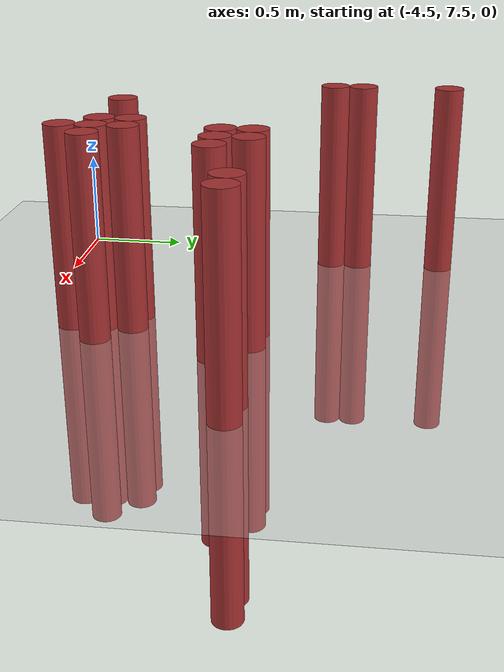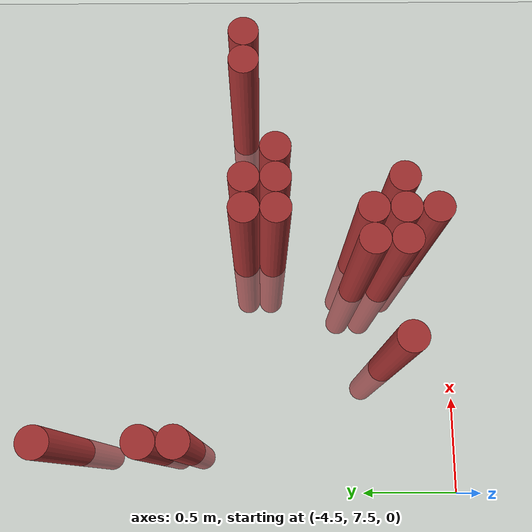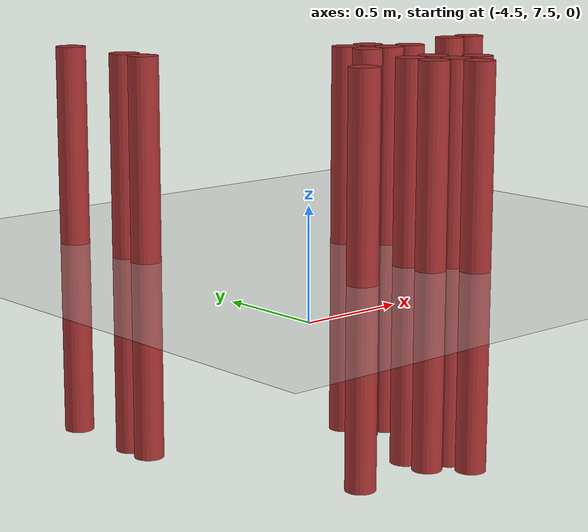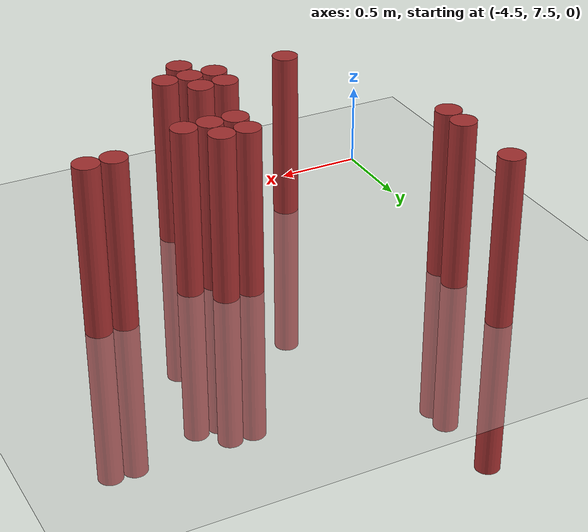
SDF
<sdf version="1.6">
 <world name="default">
  <model name="ground_plane">
   <static>1</static>
   <link name="link">
    <collision name="collision">
     <geometry><plane><normal>0 0 1</normal><size>100 100</size></plane></geometry>
     <surface><friction><ode><mu>100</mu><mu2>50</mu2></ode></friction></surface>
    </collision>
    <visual name="visual">
     <cast_shadows>0</cast_shadows>
     <geometry><plane><normal>0 0 1</normal><size>100 100</size></plane></geometry>
     <material>
      <script><uri>file://media/materials/scripts/gazebo.material</uri><name>Gazebo/Grey</name></script>
     </material>
    </visual>
   </link>
  </model>
  <model name="unit_cylinder_138">
   <static>1</static>
   <pose>-4.275000 8.925000 0.000000 0.000000 0.000000 0.000000</pose>
   <link name="link">
    <inertial>
     <mass>1</mass>
     <inertia><ixx>0.145833</ixx><ixy>0</ixy><ixz>0</ixz><iyy>0.145833</iyy><iyz>0</iyz><izz>0.125</izz></inertia>
    </inertial>
    <collision name="collision">
     <geometry><cylinder><radius>0.075000</radius><length>2</length></cylinder></geometry>
    </collision>
    <visual name="visual">
     <geometry><cylinder><radius>0.075000</radius><length>2</length></cylinder></geometry>
     <material>
      <ambient>0.648000 0.192000 0.192000 1</ambient>
      <diffuse>0.648000 0.192000 0.192000 1</diffuse>
     </material>
     <material>
      <script><name>Gazebo/Grey</name><uri>file://media/materials/scripts/gazebo.material</uri></script>
     </material>
    </visual>
   </link>
  </model>
  <model name="unit_cylinder_139">
   <static>1</static>
   <pose>-4.275000 9.075000 0.000000 0.000000 0.000000 0.000000</pose>
   <link name="link">
    <inertial>
     <mass>1</mass>
     <inertia><ixx>0.145833</ixx><ixy>0</ixy><ixz>0</ixz><iyy>0.145833</iyy><iyz>0</iyz><izz>0.125</izz></inertia>
    </inertial>
    <collision name="collision">
     <geometry><cylinder><radius>0.075000</radius><length>2</length></cylinder></geometry>
    </collision>
    <visual name="visual">
     <geometry><cylinder><radius>0.075000</radius><length>2</length></cylinder></geometry>
     <material>
      <ambient>0.648000 0.192000 0.192000 1</ambient>
      <diffuse>0.648000 0.192000 0.192000 1</diffuse>
     </material>
     <material>
      <script><name>Gazebo/Grey</name><uri>file://media/materials/scripts/gazebo.material</uri></script>
     </material>
    </visual>
   </link>
  </model>
  <model name="unit_cylinder_140">
   <static>1</static>
   <pose>-4.275000 9.525000 0.000000 0.000000 0.000000 0.000000</pose>
   <link name="link">
    <inertial>
     <mass>1</mass>
     <inertia><ixx>0.145833</ixx><ixy>0</ixy><ixz>0</ixz><iyy>0.145833</iyy><iyz>0</iyz><izz>0.125</izz></inertia>
    </inertial>
    <collision name="collision">
     <geometry><cylinder><radius>0.075000</radius><length>2</length></cylinder></geometry>
    </collision>
    <visual name="visual">
     <geometry><cylinder><radius>0.075000</radius><length>2</length></cylinder></geometry>
     <material>
      <ambient>0.648000 0.192000 0.192000 1</ambient>
      <diffuse>0.648000 0.192000 0.192000 1</diffuse>
     </material>
     <material>
      <script><name>Gazebo/Grey</name><uri>file://media/materials/scripts/gazebo.material</uri></script>
     </material>
    </visual>
   </link>
  </model>
  <model name="unit_cylinder_147">
   <static>1</static>
   <pose>-3.825000 7.875000 0.000000 0.000000 0.000000 0.000000</pose>
   <link name="link">
    <inertial>
     <mass>1</mass>
     <inertia><ixx>0.145833</ixx><ixy>0</ixy><ixz>0</ixz><iyy>0.145833</iyy><iyz>0</iyz><izz>0.125</izz></inertia>
    </inertial>
    <collision name="collision">
     <geometry><cylinder><radius>0.075000</radius><length>2</length></cylinder></geometry>
    </collision>
    <visual name="visual">
     <geometry><cylinder><radius>0.075000</radius><length>2</length></cylinder></geometry>
     <material>
      <ambient>0.648000 0.192000 0.192000 1</ambient>
      <diffuse>0.648000 0.192000 0.192000 1</diffuse>
     </material>
     <material>
      <script><name>Gazebo/Grey</name><uri>file://media/materials/scripts/gazebo.material</uri></script>
     </material>
    </visual>
   </link>
  </model>
  <model name="unit_cylinder_155">
   <static>1</static>
   <pose>-3.375000 7.875000 0.000000 0.000000 0.000000 0.000000</pose>
   <link name="link">
    <inertial>
     <mass>1</mass>
     <inertia><ixx>0.145833</ixx><ixy>0</ixy><ixz>0</ixz><iyy>0.145833</iyy><iyz>0</iyz><izz>0.125</izz></inertia>
    </inertial>
    <collision name="collision">
     <geometry><cylinder><radius>0.075000</radius><length>2</length></cylinder></geometry>
    </collision>
    <visual name="visual">
     <geometry><cylinder><radius>0.075000</radius><length>2</length></cylinder></geometry>
     <material>
      <ambient>0.648000 0.192000 0.192000 1</ambient>
      <diffuse>0.648000 0.192000 0.192000 1</diffuse>
     </material>
     <material>
      <script><name>Gazebo/Grey</name><uri>file://media/materials/scripts/gazebo.material</uri></script>
     </material>
    </visual>
   </link>
  </model>
  <model name="unit_cylinder_156">
   <static>1</static>
   <pose>-3.375000 8.025000 0.000000 0.000000 0.000000 0.000000</pose>
   <link name="link">
    <inertial>
     <mass>1</mass>
     <inertia><ixx>0.145833</ixx><ixy>0</ixy><ixz>0</ixz><iyy>0.145833</iyy><iyz>0</iyz><izz>0.125</izz></inertia>
    </inertial>
    <collision name="collision">
     <geometry><cylinder><radius>0.075000</radius><length>2</length></cylinder></geometry>
    </collision>
    <visual name="visual">
     <geometry><cylinder><radius>0.075000</radius><length>2</length></cylinder></geometry>
     <material>
      <ambient>0.648000 0.192000 0.192000 1</ambient>
      <diffuse>0.648000 0.192000 0.192000 1</diffuse>
     </material>
     <material>
      <script><name>Gazebo/Grey</name><uri>file://media/materials/scripts/gazebo.material</uri></script>
     </material>
    </visual>
   </link>
  </model>
  <model name="unit_cylinder_158">
   <static>1</static>
   <pose>-3.225000 7.725000 0.000000 0.000000 0.000000 0.000000</pose>
   <link name="link">
    <inertial>
     <mass>1</mass>
     <inertia><ixx>0.145833</ixx><ixy>0</ixy><ixz>0</ixz><iyy>0.145833</iyy><iyz>0</iyz><izz>0.125</izz></inertia>
    </inertial>
    <collision name="collision">
     <geometry><cylinder><radius>0.075000</radius><length>2</length></cylinder></geometry>
    </collision>
    <visual name="visual">
     <geometry><cylinder><radius>0.075000</radius><length>2</length></cylinder></geometry>
     <material>
      <ambient>0.648000 0.192000 0.192000 1</ambient>
      <diffuse>0.648000 0.192000 0.192000 1</diffuse>
     </material>
     <material>
      <script><name>Gazebo/Grey</name><uri>file://media/materials/scripts/gazebo.material</uri></script>
     </material>
    </visual>
   </link>
  </model>
  <model name="unit_cylinder_159">
   <static>1</static>
   <pose>-3.225000 7.875000 0.000000 0.000000 0.000000 0.000000</pose>
   <link name="link">
    <inertial>
     <mass>1</mass>
     <inertia><ixx>0.145833</ixx><ixy>0</ixy><ixz>0</ixz><iyy>0.145833</iyy><iyz>0</iyz><izz>0.125</izz></inertia>
    </inertial>
    <collision name="collision">
     <geometry><cylinder><radius>0.075000</radius><length>2</length></cylinder></geometry>
    </collision>
    <visual name="visual">
     <geometry><cylinder><radius>0.075000</radius><length>2</length></cylinder></geometry>
     <material>
      <ambient>0.648000 0.192000 0.192000 1</ambient>
      <diffuse>0.648000 0.192000 0.192000 1</diffuse>
     </material>
     <material>
      <script><name>Gazebo/Grey</name><uri>file://media/materials/scripts/gazebo.material</uri></script>
     </material>
    </visual>
   </link>
  </model>
  <model name="unit_cylinder_160">
   <static>1</static>
   <pose>-3.225000 8.025000 0.000000 0.000000 0.000000 0.000000</pose>
   <link name="link">
    <inertial>
     <mass>1</mass>
     <inertia><ixx>0.145833</ixx><ixy>0</ixy><ixz>0</ixz><iyy>0.145833</iyy><iyz>0</iyz><izz>0.125</izz></inertia>
    </inertial>
    <collision name="collision">
     <geometry><cylinder><radius>0.075000</radius><length>2</length></cylinder></geometry>
    </collision>
    <visual name="visual">
     <geometry><cylinder><radius>0.075000</radius><length>2</length></cylinder></geometry>
     <material>
      <ambient>0.648000 0.192000 0.192000 1</ambient>
      <diffuse>0.648000 0.192000 0.192000 1</diffuse>
     </material>
     <material>
      <script><name>Gazebo/Grey</name><uri>file://media/materials/scripts/gazebo.material</uri></script>
     </material>
    </visual>
   </link>
  </model>
  <model name="unit_cylinder_161">
   <static>1</static>
   <pose>-3.225000 8.475000 0.000000 0.000000 0.000000 0.000000</pose>
   <link name="link">
    <inertial>
     <mass>1</mass>
     <inertia><ixx>0.145833</ixx><ixy>0</ixy><ixz>0</ixz><iyy>0.145833</iyy><iyz>0</iyz><izz>0.125</izz></inertia>
    </inertial>
    <collision name="collision">
     <geometry><cylinder><radius>0.075000</radius><length>2</length></cylinder></geometry>
    </collision>
    <visual name="visual">
     <geometry><cylinder><radius>0.075000</radius><length>2</length></cylinder></geometry>
     <material>
      <ambient>0.648000 0.192000 0.192000 1</ambient>
      <diffuse>0.648000 0.192000 0.192000 1</diffuse>
     </material>
     <material>
      <script><name>Gazebo/Grey</name><uri>file://media/materials/scripts/gazebo.material</uri></script>
     </material>
    </visual>
   </link>
  </model>
  <model name="unit_cylinder_162">
   <static>1</static>
   <pose>-3.225000 8.625000 0.000000 0.000000 0.000000 0.000000</pose>
   <link name="link">
    <inertial>
     <mass>1</mass>
     <inertia><ixx>0.145833</ixx><ixy>0</ixy><ixz>0</ixz><iyy>0.145833</iyy><iyz>0</iyz><izz>0.125</izz></inertia>
    </inertial>
    <collision name="collision">
     <geometry><cylinder><radius>0.075000</radius><length>2</length></cylinder></geometry>
    </collision>
    <visual name="visual">
     <geometry><cylinder><radius>0.075000</radius><length>2</length></cylinder></geometry>
     <material>
      <ambient>0.648000 0.192000 0.192000 1</ambient>
      <diffuse>0.648000 0.192000 0.192000 1</diffuse>
     </material>
     <material>
      <script><name>Gazebo/Grey</name><uri>file://media/materials/scripts/gazebo.material</uri></script>
     </material>
    </visual>
   </link>
  </model>
  <model name="unit_cylinder_168">
   <static>1</static>
   <pose>-3.075000 7.875000 0.000000 0.000000 0.000000 0.000000</pose>
   <link name="link">
    <inertial>
     <mass>1</mass>
     <inertia><ixx>0.145833</ixx><ixy>0</ixy><ixz>0</ixz><iyy>0.145833</iyy><iyz>0</iyz><izz>0.125</izz></inertia>
    </inertial>
    <collision name="collision">
     <geometry><cylinder><radius>0.075000</radius><length>2</length></cylinder></geometry>
    </collision>
    <visual name="visual">
     <geometry><cylinder><radius>0.075000</radius><length>2</length></cylinder></geometry>
     <material>
      <ambient>0.648000 0.192000 0.192000 1</ambient>
      <diffuse>0.648000 0.192000 0.192000 1</diffuse>
     </material>
     <material>
      <script><name>Gazebo/Grey</name><uri>file://media/materials/scripts/gazebo.material</uri></script>
     </material>
    </visual>
   </link>
  </model>
  <model name="unit_cylinder_169">
   <static>1</static>
   <pose>-3.075000 8.475000 0.000000 0.000000 0.000000 0.000000</pose>
   <link name="link">
    <inertial>
     <mass>1</mass>
     <inertia><ixx>0.145833</ixx><ixy>0</ixy><ixz>0</ixz><iyy>0.145833</iyy><iyz>0</iyz><izz>0.125</izz></inertia>
    </inertial>
    <collision name="collision">
     <geometry><cylinder><radius>0.075000</radius><length>2</length></cylinder></geometry>
    </collision>
    <visual name="visual">
     <geometry><cylinder><radius>0.075000</radius><length>2</length></cylinder></geometry>
     <material>
      <ambient>0.648000 0.192000 0.192000 1</ambient>
      <diffuse>0.648000 0.192000 0.192000 1</diffuse>
     </material>
     <material>
      <script><name>Gazebo/Grey</name><uri>file://media/materials/scripts/gazebo.material</uri></script>
     </material>
    </visual>
   </link>
  </model>
  <model name="unit_cylinder_170">
   <static>1</static>
   <pose>-3.075000 8.625000 0.000000 0.000000 0.000000 0.000000</pose>
   <link name="link">
    <inertial>
     <mass>1</mass>
     <inertia><ixx>0.145833</ixx><ixy>0</ixy><ixz>0</ixz><iyy>0.145833</iyy><iyz>0</iyz><izz>0.125</izz></inertia>
    </inertial>
    <collision name="collision">
     <geometry><cylinder><radius>0.075000</radius><length>2</length></cylinder></geometry>
    </collision>
    <visual name="visual">
     <geometry><cylinder><radius>0.075000</radius><length>2</length></cylinder></geometry>
     <material>
      <ambient>0.648000 0.192000 0.192000 1</ambient>
      <diffuse>0.648000 0.192000 0.192000 1</diffuse>
     </material>
     <material>
      <script><name>Gazebo/Grey</name><uri>file://media/materials/scripts/gazebo.material</uri></script>
     </material>
    </visual>
   </link>
  </model>
  <model name="unit_cylinder_175">
   <static>1</static>
   <pose>-2.925000 8.475000 0.000000 0.000000 0.000000 0.000000</pose>
   <link name="link">
    <inertial>
     <mass>1</mass>
     <inertia><ixx>0.145833</ixx><ixy>0</ixy><ixz>0</ixz><iyy>0.145833</iyy><iyz>0</iyz><izz>0.125</izz></inertia>
    </inertial>
    <collision name="collision">
     <geometry><cylinder><radius>0.075000</radius><length>2</length></cylinder></geometry>
    </collision>
    <visual name="visual">
     <geometry><cylinder><radius>0.075000</radius><length>2</length></cylinder></geometry>
     <material>
      <ambient>0.648000 0.192000 0.192000 1</ambient>
      <diffuse>0.648000 0.192000 0.192000 1</diffuse>
     </material>
     <material>
      <script><name>Gazebo/Grey</name><uri>file://media/materials/scripts/gazebo.material</uri></script>
     </material>
    </visual>
   </link>
  </model>
  <model name="unit_cylinder_189">
   <static>1</static>
   <pose>-2.475000 8.625000 0.000000 0.000000 0.000000 0.000000</pose>
   <link name="link">
    <inertial>
     <mass>1</mass>
     <inertia><ixx>0.145833</ixx><ixy>0</ixy><ixz>0</ixz><iyy>0.145833</iyy><iyz>0</iyz><izz>0.125</izz></inertia>
    </inertial>
    <collision name="collision">
     <geometry><cylinder><radius>0.075000</radius><length>2</length></cylinder></geometry>
    </collision>
    <visual name="visual">
     <geometry><cylinder><radius>0.075000</radius><length>2</length></cylinder></geometry>
     <material>
      <ambient>0.648000 0.192000 0.192000 1</ambient>
      <diffuse>0.648000 0.192000 0.192000 1</diffuse>
     </material>
     <material>
      <script><name>Gazebo/Grey</name><uri>file://media/materials/scripts/gazebo.material</uri></script>
     </material>
    </visual>
   </link>
  </model>
  <model name="unit_cylinder_191">
   <static>1</static>
   <pose>-2.325000 8.625000 0.000000 0.000000 0.000000 0.000000</pose>
   <link name="link">
    <inertial>
     <mass>1</mass>
     <inertia><ixx>0.145833</ixx><ixy>0</ixy><ixz>0</ixz><iyy>0.145833</iyy><iyz>0</iyz><izz>0.125</izz></inertia>
    </inertial>
    <collision name="collision">
     <geometry><cylinder><radius>0.075000</radius><length>2</length></cylinder></geometry>
    </collision>
    <visual name="visual">
     <geometry><cylinder><radius>0.075000</radius><length>2</length></cylinder></geometry>
     <material>
      <ambient>0.648000 0.192000 0.192000 1</ambient>
      <diffuse>0.648000 0.192000 0.192000 1</diffuse>
     </material>
     <material>
      <script><name>Gazebo/Grey</name><uri>file://media/materials/scripts/gazebo.material</uri></script>
     </material>
    </visual>
   </link>
  </model>
 </world>
</sdf>
